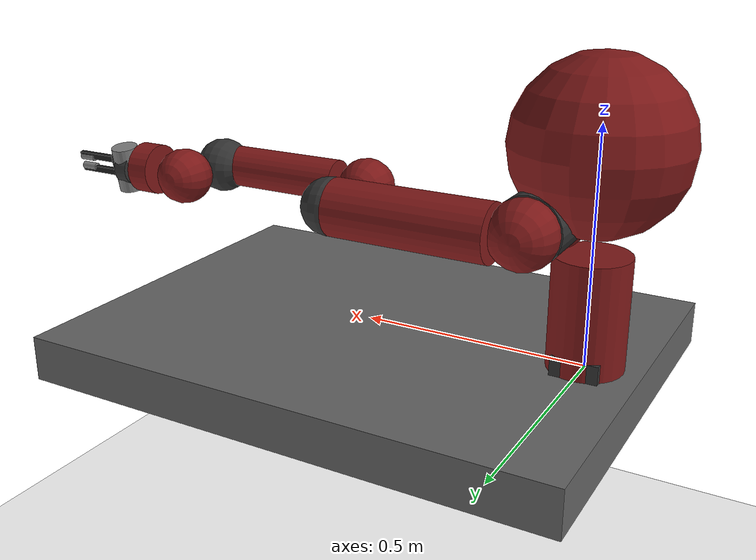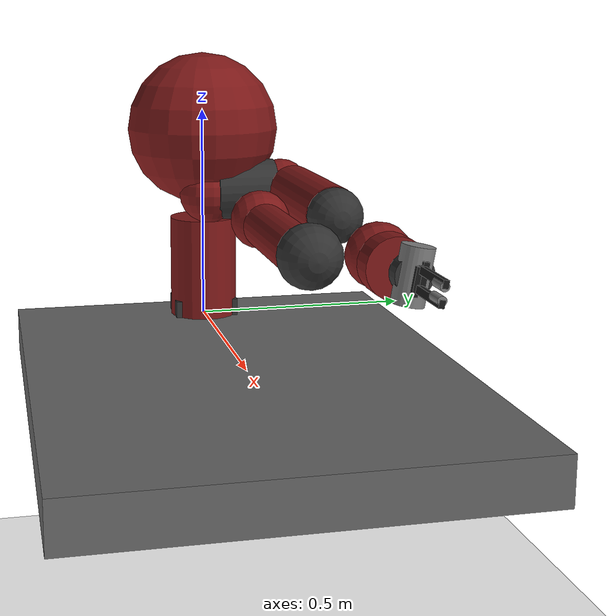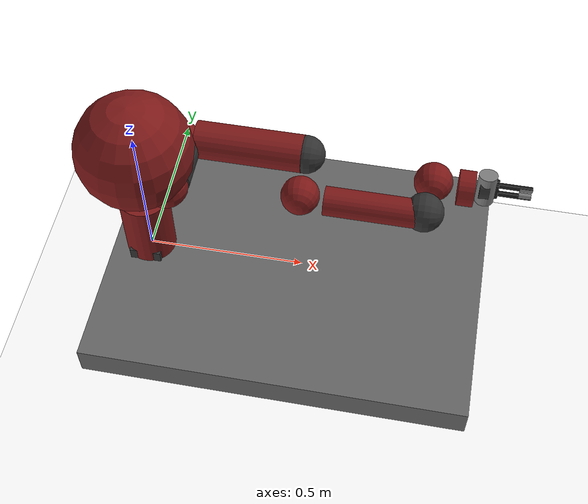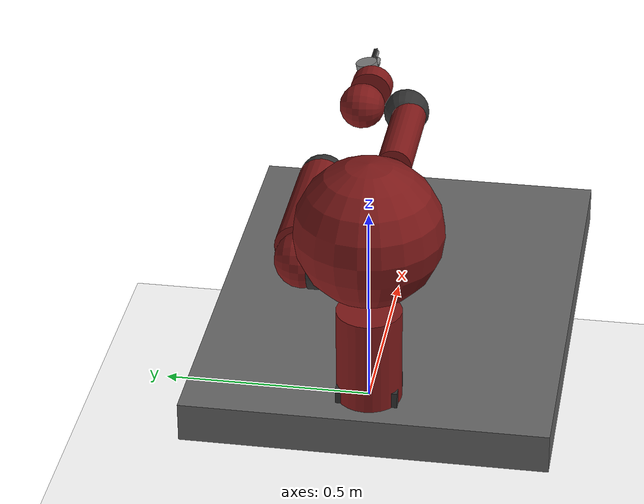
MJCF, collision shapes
<mujoco>
  <compiler angle="radian" meshdir="meshes/" />
  <asset>
    <include file="shared_assets.xml"></include>
  </asset>
  <default>
    <include file="shared.xml"></include>
  </default>
  <option timestep="0.002">
    <flag warmstart="enable"></flag>
  </option>

  <worldbody>
    <light directional="true" ambient="0.2 0.2 0.2" diffuse="0.8 0.8 0.8" specular="0.03 0.03 0.03" castshadow="false" pos="2 2 2" dir="-1 -.2 -.8" name="light0"></light>
    <geom name="floor0" pos="0.4 0 -0.8" size="2.2 2.7 1" type="plane" condim="3" material="floor_mat"></geom>

    <camera name="camera_topdown" mode="fixed" zaxis="0 0 1" pos="0 0 3" />
    <camera name="camera_side" mode="fixed" zaxis="0 -1 0" pos="0.4 -2 0.5" />
    <camera name="camera_front" mode="fixed" xyaxes="0 1 0 0 0 1" pos="2.4 0 0.5" />

    <body name="object0" pos="0 0 0">
      <joint name="object0:joint1" type="slide" damping="50" axis="1 0 0" range="-100 100"/>
      <joint name="object0:joint2" type="slide" damping="50" axis="0 1 0" range="-100 100"/>
      <joint name="object0:joint3" type="slide" damping="500" axis="0 0 1" range="0 0.04"/>
      <joint name="object0:rot" type="ball" damping="0.1" range="0 6.28319"/>
      <geom size="0.05 0.075 0.04" type="box" condim="3" name="object0" contype="1" conaffinity="1" material="block_mat" mass="10"/>
    </body>

    <body name="desired_goal">
      <joint name="desired_goal:joint" type="free" damping="10"/>
      <geom conaffinity="0" contype="0" pos="0 0 0" rgba="0 1 0 1" size="0.01" type="sphere" name="desired_goal" />
    </body>

    <include file="sawyer_robot.xml"/>
  </worldbody>

  <actuator>
    <position ctrllimited="true" ctrlrange="0 0.020833" joint="r_gripper_l_finger_joint" kp="120000" name="slide_l_claw"
              user="1"/>
    <position ctrllimited="true" ctrlrange="-0.020833 0" joint="r_gripper_r_finger_joint" kp="120000" name="slide_r_claw"
              user="1"/>
    <position joint="right_j0" ctrlrange="-3.0503 3.0503" ctrllimited="true" kp="120000" name="pos_right_j0"/>
    <position joint="right_j1" ctrlrange="-3.8095 2.2736" ctrllimited="true" kp="120000" name="pos_right_j1"/>
    <position joint="right_j2" ctrlrange="-3.0426 3.0426" ctrllimited="true" kp="120000" name="pos_right_j2"/>
    <position joint="right_j3" ctrlrange="-3.0439 3.0439" ctrllimited="true" kp="120000" name="pos_right_j3"/>
    <position joint="right_j4" ctrlrange="-2.9761 2.9761" ctrllimited="true" kp="120000" name="pos_right_j4"/>
    <position joint="right_j5" ctrlrange="-2.9761 2.9761" ctrllimited="true" kp="120000" name="pos_right_j5"/>
    <position joint="right_j6" ctrlrange="-4.7124 4.7124" ctrllimited="true" kp="120000" name="pos_right_j6"/>
  </actuator>
</mujoco>

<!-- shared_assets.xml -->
<mujoco>
  <texture type="skybox" builtin="gradient" rgb1="0.44 0.85 0.56" rgb2="0.46 0.87 0.58" width="32" height="32"></texture>
  <material name="floor_mat" specular="0" shininess="0.5" reflectance="0" rgba="1 1 1 1"></material>
  <material name="block_mat" specular="0" shininess="0.5" reflectance="0" rgba="0.2 0.2 0.2 1"></material>
  <mesh name="base" file="base.STL" />
  <mesh name="l0" file="l0.STL" />
  <mesh name="head" file="head.STL" />
  <mesh name="l1" file="l1.STL" />
  <mesh name="l2" file="l2.STL" />
  <mesh name="l3" file="l3.STL" />
  <mesh name="l4" file="l4.STL" />
  <mesh name="l5" file="l5.STL" />
  <mesh name="l6" file="l6.STL" />
  <mesh name="half_round_tip" file="half_round_tip.STL" />
  <mesh name="electric_gripper_base" file="electric_gripper_base.STL" />
  <mesh name="extended_narrow" file="extended_narrow.STL"/>
  <mesh name="paddle_tip" file="paddle_tip.STL"/>
  <mesh name="yellow_bin_v1" file="yellow_bin_v1.STL"/>
  <mesh name="red_bin_v1" file="red_bin_v1.STL"/>
  <mesh name="green_bin_v1" file="green_bin_v1.STL"/>
  <mesh name="pedestal_table" file="pedestal_table.STL"/>
</mujoco>

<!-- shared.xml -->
<mujoco>
  <geom solref="0.008 1" solimp="0.8 0.9 0." friction="0.2 0.005 0.001" />
  <default class="viz">
    <geom contype="0" conaffinity="0" group="1" type="mesh"/>
  </default>
  <motor ctrllimited="true" ctrlrange="-1 1"/>
  <position ctrllimited="true"/>
  <default class='0'>
    <geom friction="1 0.005 0.001" rgba=".75 .6 .5 1" contype="1" conaffinity="0"/>
  </default>
  <default class='1'>
    <geom friction="1 0.005 0.001" rgba=".7 .6 .55 1" contype="1" conaffinity="0"/>
  </default>
  <default class='arm'>
  </default>
</mujoco>

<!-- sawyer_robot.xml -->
<mujoco>
    <body name="pedestal_table" pos="0.482 0 -0.05">
      <inertial pos="0 0 0" quat="0.659267 -0.259505 -0.260945 0.655692" mass="60.864" diaginertia="6.0869 5.81635 4.20915" />
      <geom name="table" size="0.6 0.45 0.05" pos="0 0 0" type="box" rgba="0.4 0.4 0.4 1" />
    <body name="right_arm_base_link" pos="-0.482 0 0.05">
      <inertial pos="-0.0006241 -2.8025e-05 0.065404" quat="-0.209285 0.674441 0.227335 0.670558" mass="2.0687" diaginertia="0.00740351 0.00681776 0.00672942" />
      <geom type="mesh" contype="0" conaffinity="0" group="1" rgba="0.5 0.1 0.1 1" mesh="base" />
      <geom size="0.08 0.12" pos="0 0 0.12" type="cylinder" rgba="0.5 0.1 0.1 0" />
      <body name="right_l0" pos="0 0 0.08">
        <inertial pos="0.024366 0.010969 0.14363" quat="0.894823 0.00899958 -0.170275 0.412573" mass="5.3213" diaginertia="0.0651588 0.0510944 0.0186218" />
        <joint name="right_j0" pos="0 0 0" axis="0 0 1" limited="true" range="-3.0503 3.0503" damping="1000"/>
        <geom type="mesh" contype="0" conaffinity="0" group="1" rgba="0.5 0.1 0.1 1" mesh="l0" />
        <geom size="0.07" pos="0.08 0 0.23" rgba="0.5 0.1 0.1 0" />
        <body name="head" pos="0 0 0.2965">
          <inertial pos="0.0053207 -2.6549e-05 0.1021" quat="0.999993 7.08405e-05 -0.00359857 -0.000626247" mass="1.5795" diaginertia="0.0118334 0.00827089 0.00496574" />
          <geom type="mesh" contype="0" conaffinity="0" group="1" rgba="0.5 0.1 0.1 1" mesh="head" />
          <geom size="0.18" pos="0 0 0.08" rgba="0.5 0.1 0.1 0" />
          <body name="screen" pos="0.03 0 0.105" quat="0.5 0.5 0.5 0.5">
            <inertial pos="0 0 0" mass="0.0001" diaginertia="1e-08 1e-08 1e-08" />
            <geom size="0.12 0.07 0.001" type="box" contype="0" conaffinity="0" group="1" rgba="0.2 0.2 0.2 0" />
            <geom size="0.001" rgba="0.2 0.2 0.2 0" />
          </body>
          <body name="head_camera" pos="0.0228027 0 0.216572" quat="0.342813 -0.618449 0.618449 -0.342813">
            <inertial pos="0.0228027 0 0.216572" quat="0.342813 -0.618449 0.618449 -0.342813" mass="0" diaginertia="0 0 0" />
            <site name="headsite" pos="0 0 0" size="0.01" />
          </body>
        </body>
        <body name="right_torso_itb" pos="-0.055 0 0.22" quat="0.707107 0 -0.707107 0">
          <inertial pos="0 0 0" mass="0.0001" diaginertia="1e-08 1e-08 1e-08" />
        </body>
        <body name="right_l1" pos="0.081 0.05 0.237" quat="0.5 -0.5 0.5 0.5">
          <inertial pos="-0.0030849 -0.026811 0.092521" quat="0.424888 0.891987 0.132364 -0.0794296" mass="4.505" diaginertia="0.0224339 0.0221624 0.0097097" />
          <joint name="right_j1" pos="0 0 0" axis="0 0 1" limited="true" range="-3.8095 2.2736" damping="1000"/>
          <geom type="mesh" contype="0" conaffinity="0" group="1" rgba="0.5 0.1 0.1 1" mesh="l1" />
          <geom size="0.07" pos="0 0 0.1225" rgba="0.5 0.1 0.1 0" />
          <body name="right_l2" pos="0 -0.14 0.1425" quat="0.707107 0.707107 0 0">
            <inertial pos="-0.00016044 -0.014967 0.13582" quat="0.707831 -0.0524761 0.0516007 0.702537" mass="1.745" diaginertia="0.0257928 0.025506 0.00292515" />
            <joint name="right_j2" pos="0 0 0" axis="0 0 1" limited="true" range="-3.0426 3.0426" damping="1000"/>
            <geom type="mesh" contype="0" conaffinity="0" group="1" rgba="0.5 0.1 0.1 1" mesh="l2" />
            <geom size="0.06 0.17" pos="0 0 0.08" type="cylinder" rgba="0.5 0.1 0.1 0" />
            <body name="right_l3" pos="0 -0.042 0.26" quat="0.707107 -0.707107 0 0">
              <site name="armsite" pos="0 0 0" size="0.01" />
              <inertial pos="-0.0048135 -0.0281 -0.084154" quat="0.902999 0.385391 -0.0880901 0.168247" mass="2.5097" diaginertia="0.0102404 0.0096997 0.00369622" />
              <joint name="right_j3" pos="0 0 0" axis="0 0 1" limited="true" range="-3.0439 3.0439" damping="1000"/>
              <geom type="mesh" contype="0" conaffinity="0" group="1" rgba="0.5 0.1 0.1 1" mesh="l3" />
              <geom size="0.06" pos="0 -0.01 -0.12" rgba="0.5 0.1 0.1 0" />
              <body name="right_l4" pos="0 -0.125 -0.1265" quat="0.707107 0.707107 0 0">
                <inertial pos="-0.0018844 0.0069001 0.1341" quat="0.803612 0.031257 -0.0298334 0.593582" mass="1.1136" diaginertia="0.0136549 0.0135493 0.00127353" />
                <joint name="right_j4" pos="0 0 0" axis="0 0 1" limited="true" range="-2.9761 2.9761" damping="1000" />
                <geom type="mesh" contype="0" conaffinity="0" group="1" rgba="0.5 0.1 0.1 1" mesh="l4" />
                <geom size="0.045 0.15" pos="0 0 0.11" type="cylinder" rgba="0.5 0.1 0.1 0" />
                <body name="right_arm_itb" pos="-0.055 0 0.075" quat="0.707107 0 -0.707107 0">
                </body>
                <body name="right_l5" pos="0 0.031 0.275" quat="0.707107 -0.707107 0 0">
                  <inertial pos="0.0061133 -0.023697 0.076416" quat="0.404076 0.9135 0.0473125 0.00158335" mass="1.5625" diaginertia="0.00474131 0.00422857 0.00190672" />
                  <joint name="right_j5" pos="0 0 0" axis="0 0 1" limited="true" range="-2.9761 2.9761" damping="1000"/>
                  <geom type="mesh" contype="0" conaffinity="0" group="1" rgba="0.5 0.1 0.1 1" mesh="l5" />
                  <geom size="0.06" pos="0 0 0.1" rgba="0.5 0.1 0.1 0" />
                  <body name="right_hand_camera" pos="0.039552 -0.033 0.0695" quat="0.707107 0 0.707107 0">
                    <inertial pos="0.039552 -0.033 0.0695" quat="0.707107 0 0.707107 0" mass="0" diaginertia="0 0 0" />
                  </body>
                  <body name="right_wrist" pos="0 0 0.10541" quat="0.707107 0.707107 0 0">
                    <inertial pos="0 0 0.10541" quat="0.707107 0.707107 0 0" mass="0" diaginertia="0 0 0" />
                  </body>
                  <body name="right_l6" pos="0 -0.11 0.1053" quat="0.0616248 0.06163 -0.704416 0.704416">
                    <inertial pos="-8.0726e-06 0.0085838 -0.0049566" quat="0.479044 0.515636 -0.513069 0.491322" mass="0.3292" diaginertia="0.000360258 0.000311068 0.000214974" />
                    <joint name="right_j6" pos="0 0 0" axis="0 0 1" limited="true" range="-4.7124 4.7124" damping="1000"/>
                    <geom type="mesh" contype="0" conaffinity="0" group="1" rgba="0.5 0.1 0.1 1" mesh="l6" />
                    <geom size="0.055 0.025" pos="0 0.015 -0.01" type="cylinder" rgba="0.5 0.1 0.1 0" />
                    <body name="right_hand" pos="0 0 0.0245" quat="0.707107 0 0 0.707107">
                      <inertial pos="1e-08 1e-08 1e-08" quat="0.820473 0.339851 -0.17592 0.424708" mass="1e-08" diaginertia="1e-08 1e-08 1e-08" />
                      <geom size="0.035 0.015" pos="0 0 0.02" type="cylinder" rgba="0.2 0.2 0.2 0"/>

<!--  ================= BEGIN GRIPPER ================= /-->
                                                        <!--site name="endeffector" pos="0 0 0" size="0.01" /-->
                                                    <!--/body-->
                                                <!--/body-->
                      <body name="right_gripper_base" pos="0 0 0.025">
                        <inertial pos="0 0 0" quat="-0.5 0.5 0.5 0.5" mass="0.3" diaginertia="3e-08 2e-08 2e-08" />
                        <geom quat="0 0 0.707107 0.707107" class="viz" mesh="electric_gripper_base" />
                        <geom size="0.029 0.05" quat="0 0 0.707107 0.707107" type="cylinder" />
                        <body name="r_gripper_l_finger" pos="0 -0.0015 0.02">
                          <inertial pos="0 0 0" quat="0 0 0 -1" mass="0.02" diaginertia="0.01 0.01 0.01" />
                          <joint name="r_gripper_l_finger_joint" pos="0 0 0" axis="0 1 0" type="slide" range="0 0.020833" armature="100" damping="1000" limited="true" solimplimit="0.99 0.999 0.01" solreflimit="0.01 1"/>
                          <geom class="viz" mesh="extended_narrow" euler="1.57 1.57 0" rgba="0.1 0.1 0.1 1"/>
                          <geom size="0.005 0.00675 0.05635" contype="0" pos="0 0.01725 0.0615" quat="0 0 0 -1" type="box" rgba="0.1 0.1 0.1 1"/>
                          <geom size="0.005 0.025 0.0085" contype="0" pos="-0.005 -0.003 0.0083" quat="0 0 0 -1" type="box" rgba="0.1 0.1 0.1 1"/>
                          <body name="r_gripper_l_finger_tip" pos="0 0.01725 0.1127">
                            <inertial pos="0 0 0" quat="0 0 0 1" mass="0.01" diaginertia="0.01 0.01 0.01" />
                            <geom pos="-.007 -.01 0.003" class="viz" mesh="half_round_tip" euler="-1.57 0 0" friction="1 1.05 0.01"/>
                            <geom name="finger_tip_1" size="0.008 0.0185" pos="0 -0.0045 -0.015" quat="0 0 0 1" type="cylinder" friction="1 1.05 0.01"/>
                          </body>
                        </body>
                        <body name="r_gripper_r_finger" pos="0 0.0015 0.02">
                          <inertial pos="0 0 0" mass="0.02" diaginertia="0.01 0.01 0.01" />
                          <joint name="r_gripper_r_finger_joint" pos="0 0 0" axis="0 1 0" type="slide" range="-0.020833 0" armature="100" damping="1000" limited="true" solimplimit="0.99 0.999 0.01" solreflimit="0.01 1"/>
                          <geom class="viz" mesh="extended_narrow" euler="1.57 -1.57 0" rgba="0.1 0.1 0.1 1"/>
                          <geom size="0.005 0.00675 0.05635" contype="0" pos="0 -0.01725 0.0615" type="box" rgba="0.1 0.1 0.1 1"/>
                          <geom size="0.005 0.025 0.0085" contype="0" pos="0.005 0.003 0.0083" type="box" rgba="0.1 0.1 0.1 1"/>
                          <body name="r_gripper_r_finger_tip" pos="0 -0.01725 0.1127">
                            <inertial pos="0 0 0" mass="0.01" diaginertia="0.01 0.01 0.01" />
                            <geom pos=".007 .01 0.003" class="viz" mesh="half_round_tip" euler="-1.57 3.14 0" friction="1 1.05 0.01"/>
                            <geom name="finger_tip_2" size="0.008 0.0185" pos="0 0.0045 -0.015" type="cylinder" friction="1 1.05 0.01"/>
                          </body>
                        </body>
                        <site name="grip" pos="0 0 0" rgba="0 0 0 0" size="0.02 0.02 0.02"></site>
                      </body>

<!--  ================= END GRIPPER ================= /-->

                    </body>
                  </body>
                </body>
                <body name="right_l4_2" pos="0 0 0">
                  <inertial pos="1e-08 1e-08 1e-08" quat="0.820473 0.339851 -0.17592 0.424708" mass="1e-08" diaginertia="1e-08 1e-08 1e-08" />
                  <geom size="0.06" pos="0 0.01 0.26" rgba="0.2 0.2 0.2 0"/>
                </body>
              </body>
            </body>
            <body name="right_l2_2" pos="0 0 0">
              <inertial pos="1e-08 1e-08 1e-08" quat="0.820473 0.339851 -0.17592 0.424708" mass="1e-08" diaginertia="1e-08 1e-08 1e-08" />
              <geom size="0.06" pos="0 0 0.26" rgba="0.2 0.2 0.2 0"/>
            </body>
          </body>
          <body name="right_l1_2" pos="0 0 0">
            <inertial pos="1e-08 1e-08 1e-08" quat="0.820473 0.339851 -0.17592 0.424708" mass="1e-08" diaginertia="1e-08 1e-08 1e-08" />
            <geom size="0.07 0.07" pos="0 0 0.035" type="cylinder" rgba="0.2 0.2 0.2 0"/>
          </body>
        </body>
      </body>
    </body>
  </body>
</mujoco>
